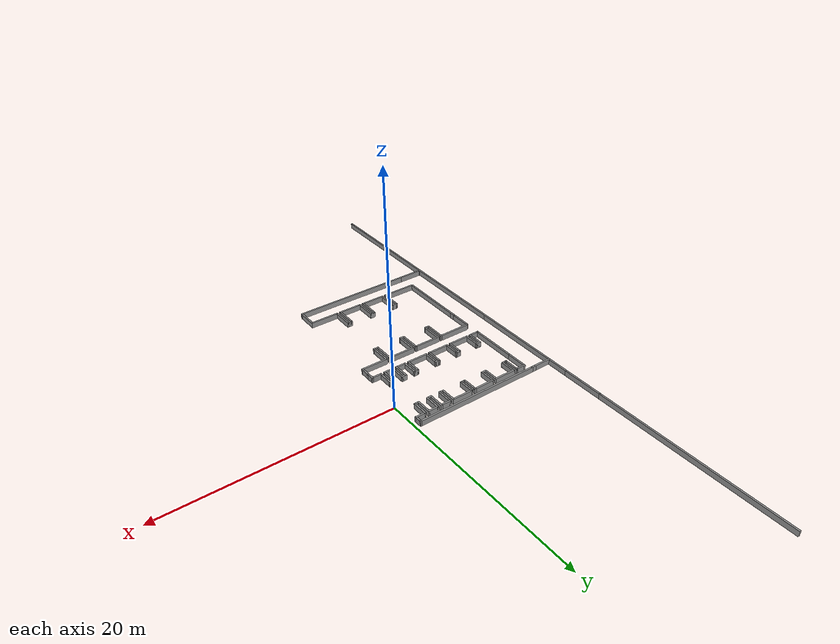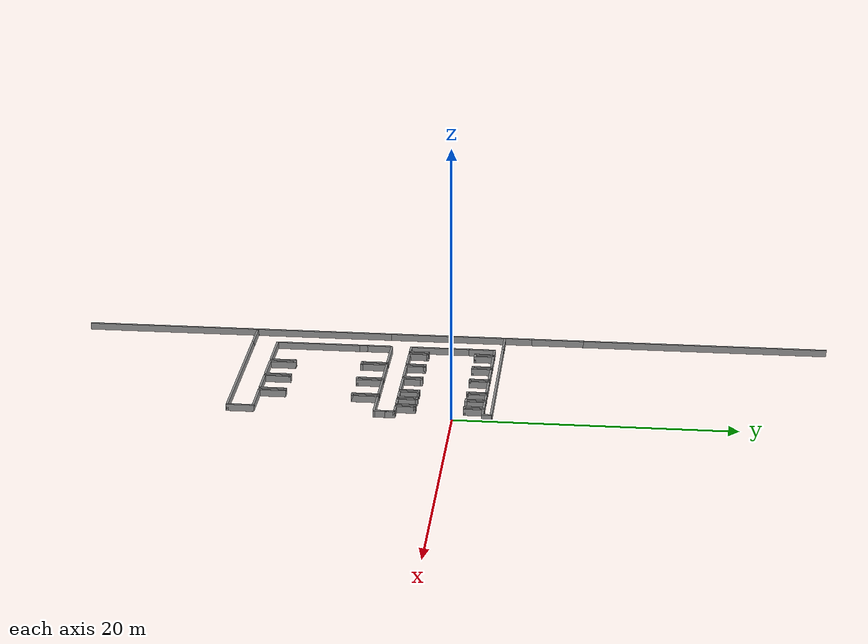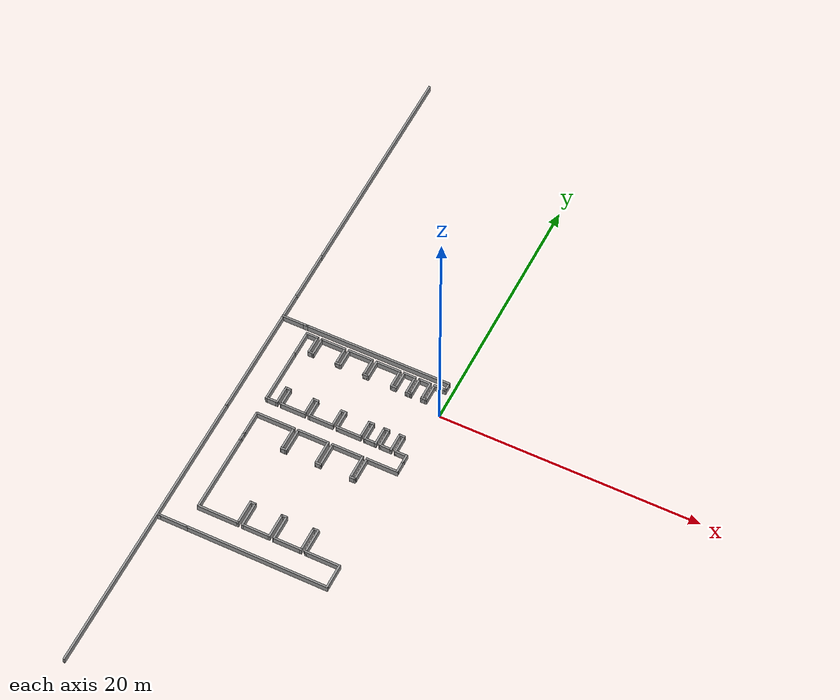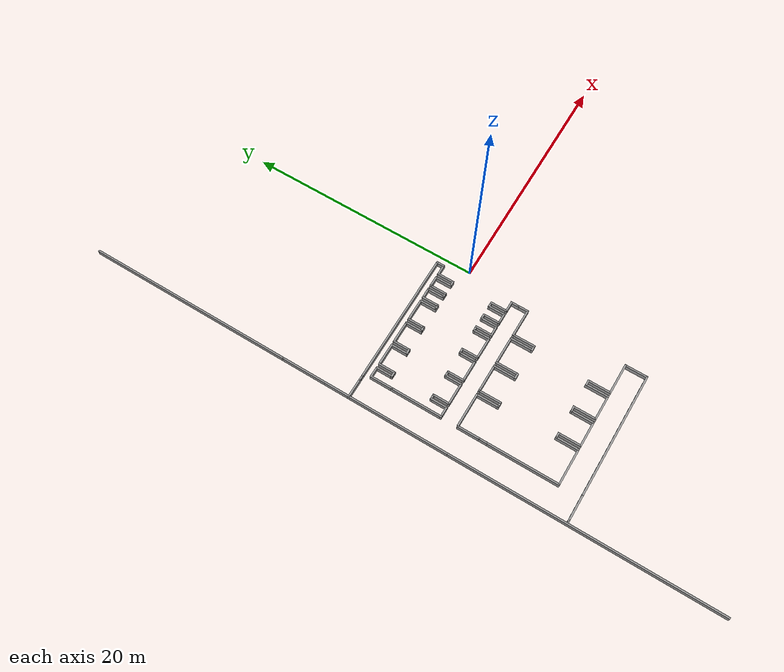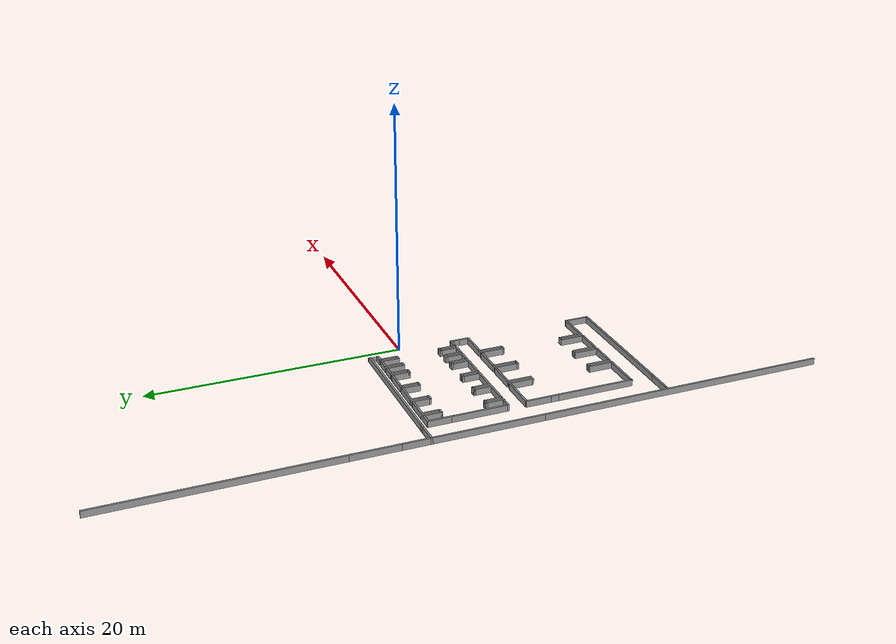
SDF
<sdf version="1.6">
 <model name="Dock3">
  <pose>-6.9775 -1.135 0 0 -0 0</pose>
  <link name="Wall_0">
   <collision name="Wall_0_Collision"><geometry><box><size>1 0.15 0.5</size></box></geometry></collision>
   <visual name="Wall_0_Visual">
    <geometry><box><size>1 0.15 0.5</size></box></geometry>
    <material>
     <script><uri>file://media/materials/scripts/gazebo.material</uri><name>Gazebo/Grey</name></script>
     <ambient>1 1 1 1</ambient>
    </material>
    <meta><layer>0</layer></meta>
   </visual>
   <pose>5.9725 -2.975 0 0 -0 3.14159</pose>
  </link>
  <link name="Wall_1">
   <collision name="Wall_1_Collision"><geometry><box><size>1.5 0.15 0.5</size></box></geometry></collision>
   <visual name="Wall_1_Visual">
    <geometry><box><size>1.5 0.15 0.5</size></box></geometry>
    <material>
     <script><uri>file://media/materials/scripts/gazebo.material</uri><name>Gazebo/Grey</name></script>
     <ambient>1 1 1 1</ambient>
    </material>
    <meta><layer>0</layer></meta>
   </visual>
   <pose>5.5475 -2.3 0 0 -0 1.5708</pose>
  </link>
  <link name="Wall_10">
   <collision name="Wall_10_Collision"><geometry><box><size>0.5 0.15 0.5</size></box></geometry></collision>
   <visual name="Wall_10_Visual">
    <geometry><box><size>0.5 0.15 0.5</size></box></geometry>
    <material>
     <script><uri>file://media/materials/scripts/gazebo.material</uri><name>Gazebo/Grey</name></script>
     <ambient>1 1 1 1</ambient>
    </material>
    <meta><layer>0</layer></meta>
   </visual>
   <pose>2.9725 -1.625 0 0 -0 3.14159</pose>
  </link>
  <link name="Wall_100">
   <collision name="Wall_100_Collision"><geometry><box><size>2 0.15 0.5</size></box></geometry></collision>
   <visual name="Wall_100_Visual">
    <geometry><box><size>2 0.15 0.5</size></box></geometry>
    <material>
     <script><uri>file://media/materials/scripts/gazebo.material</uri><name>Gazebo/Grey</name></script>
     <ambient>1 1 1 1</ambient>
    </material>
    <meta><layer>0</layer></meta>
   </visual>
   <pose>1.3475 -5.35 0 0 -0 -1.5708</pose>
  </link>
  <link name="Wall_101">
   <collision name="Wall_101_Collision"><geometry><box><size>0.5 0.15 0.5</size></box></geometry></collision>
   <visual name="Wall_101_Visual">
    <geometry><box><size>0.5 0.15 0.5</size></box></geometry>
    <material>
     <script><uri>file://media/materials/scripts/gazebo.material</uri><name>Gazebo/Grey</name></script>
     <ambient>1 1 1 1</ambient>
    </material>
    <meta><layer>0</layer></meta>
   </visual>
   <pose>1.1725 -6.275 0 0 -0 3.14159</pose>
  </link>
  <link name="Wall_102">
   <collision name="Wall_102_Collision"><geometry><box><size>2 0.15 0.5</size></box></geometry></collision>
   <visual name="Wall_102_Visual">
    <geometry><box><size>2 0.15 0.5</size></box></geometry>
    <material>
     <script><uri>file://media/materials/scripts/gazebo.material</uri><name>Gazebo/Grey</name></script>
     <ambient>1 1 1 1</ambient>
    </material>
    <meta><layer>0</layer></meta>
   </visual>
   <pose>0.997501 -5.35 0 0 -0 1.5708</pose>
  </link>
  <link name="Wall_103">
   <collision name="Wall_103_Collision"><geometry><box><size>2.5 0.15 0.5</size></box></geometry></collision>
   <visual name="Wall_103_Visual">
    <geometry><box><size>2.5 0.15 0.5</size></box></geometry>
    <material>
     <script><uri>file://media/materials/scripts/gazebo.material</uri><name>Gazebo/Grey</name></script>
     <ambient>1 1 1 1</ambient>
    </material>
    <meta><layer>0</layer></meta>
   </visual>
   <pose>-0.177499 -4.425 0 0 -0 3.14159</pose>
  </link>
  <link name="Wall_104">
   <collision name="Wall_104_Collision"><geometry><box><size>2 0.15 0.5</size></box></geometry></collision>
   <visual name="Wall_104_Visual">
    <geometry><box><size>2 0.15 0.5</size></box></geometry>
    <material>
     <script><uri>file://media/materials/scripts/gazebo.material</uri><name>Gazebo/Grey</name></script>
     <ambient>1 1 1 1</ambient>
    </material>
    <meta><layer>0</layer></meta>
   </visual>
   <pose>-1.3525 -5.35 0 0 -0 -1.5708</pose>
  </link>
  <link name="Wall_105">
   <collision name="Wall_105_Collision"><geometry><box><size>0.5 0.15 0.5</size></box></geometry></collision>
   <visual name="Wall_105_Visual">
    <geometry><box><size>0.5 0.15 0.5</size></box></geometry>
    <material>
     <script><uri>file://media/materials/scripts/gazebo.material</uri><name>Gazebo/Grey</name></script>
     <ambient>1 1 1 1</ambient>
    </material>
    <meta><layer>0</layer></meta>
   </visual>
   <pose>-1.5275 -6.275 0 0 -0 3.14159</pose>
  </link>
  <link name="Wall_106">
   <collision name="Wall_106_Collision"><geometry><box><size>2 0.15 0.5</size></box></geometry></collision>
   <visual name="Wall_106_Visual">
    <geometry><box><size>2 0.15 0.5</size></box></geometry>
    <material>
     <script><uri>file://media/materials/scripts/gazebo.material</uri><name>Gazebo/Grey</name></script>
     <ambient>1 1 1 1</ambient>
    </material>
    <meta><layer>0</layer></meta>
   </visual>
   <pose>-1.7025 -5.35 0 0 -0 1.5708</pose>
  </link>
  <link name="Wall_11">
   <collision name="Wall_11_Collision"><geometry><box><size>1.5 0.15 0.5</size></box></geometry></collision>
   <visual name="Wall_11_Visual">
    <geometry><box><size>1.5 0.15 0.5</size></box></geometry>
    <material>
     <script><uri>file://media/materials/scripts/gazebo.material</uri><name>Gazebo/Grey</name></script>
     <ambient>1 1 1 1</ambient>
    </material>
    <meta><layer>0</layer></meta>
   </visual>
   <pose>2.7975 -2.3 0 0 -0 -1.5708</pose>
  </link>
  <link name="Wall_112">
   <collision name="Wall_112_Collision"><geometry><box><size>3 0.15 0.5</size></box></geometry></collision>
   <visual name="Wall_112_Visual">
    <geometry><box><size>3 0.15 0.5</size></box></geometry>
    <material>
     <script><uri>file://media/materials/scripts/gazebo.material</uri><name>Gazebo/Grey</name></script>
     <ambient>1 1 1 1</ambient>
    </material>
    <meta><layer>0</layer></meta>
   </visual>
   <pose>-3.1275 -4.425 0 0 -0 3.14159</pose>
  </link>
  <link name="Wall_114">
   <collision name="Wall_114_Collision"><geometry><box><size>0.75 0.15 0.5</size></box></geometry></collision>
   <visual name="Wall_114_Visual">
    <geometry><box><size>0.75 0.15 0.5</size></box></geometry>
    <material>
     <script><uri>file://media/materials/scripts/gazebo.material</uri><name>Gazebo/Grey</name></script>
     <ambient>1 1 1 1</ambient>
    </material>
    <meta><layer>0</layer></meta>
   </visual>
   <pose>-4.6525 -6.625 0 0 -0 -1.5708</pose>
  </link>
  <link name="Wall_116">
   <collision name="Wall_116_Collision"><geometry><box><size>2 0.15 0.5</size></box></geometry></collision>
   <visual name="Wall_116_Visual">
    <geometry><box><size>2 0.15 0.5</size></box></geometry>
    <material>
     <script><uri>file://media/materials/scripts/gazebo.material</uri><name>Gazebo/Grey</name></script>
     <ambient>1 1 1 1</ambient>
    </material>
    <meta><layer>0</layer></meta>
   </visual>
   <pose>-4.6525 -5.4 0 0 -0 1.5708</pose>
  </link>
  <link name="Wall_118">
   <collision name="Wall_118_Collision"><geometry><box><size>6.25 0.15 0.5</size></box></geometry></collision>
   <visual name="Wall_118_Visual">
    <geometry><box><size>6.25 0.15 0.5</size></box></geometry>
    <material>
     <script><uri>file://media/materials/scripts/gazebo.material</uri><name>Gazebo/Grey</name></script>
     <ambient>1 1 1 1</ambient>
    </material>
    <meta><layer>0</layer></meta>
   </visual>
   <pose>-4.6525 -9.975 0 0 -0 -1.5708</pose>
  </link>
  <link name="Wall_119">
   <collision name="Wall_119_Collision"><geometry><box><size>3.25 0.15 0.5</size></box></geometry></collision>
   <visual name="Wall_119_Visual">
    <geometry><box><size>3.25 0.15 0.5</size></box></geometry>
    <material>
     <script><uri>file://media/materials/scripts/gazebo.material</uri><name>Gazebo/Grey</name></script>
     <ambient>1 1 1 1</ambient>
    </material>
    <meta><layer>0</layer></meta>
   </visual>
   <pose>-3.1025 -13.025 0 0 -0 0</pose>
  </link>
  <link name="Wall_12">
   <collision name="Wall_12_Collision"><geometry><box><size>2 0.15 0.5</size></box></geometry></collision>
   <visual name="Wall_12_Visual">
    <geometry><box><size>2 0.15 0.5</size></box></geometry>
    <material>
     <script><uri>file://media/materials/scripts/gazebo.material</uri><name>Gazebo/Grey</name></script>
     <ambient>1 1 1 1</ambient>
    </material>
    <meta><layer>0</layer></meta>
   </visual>
   <pose>1.8725 -2.975 0 0 -0 3.14159</pose>
  </link>
  <link name="Wall_120">
   <collision name="Wall_120_Collision"><geometry><box><size>2 0.15 0.5</size></box></geometry></collision>
   <visual name="Wall_120_Visual">
    <geometry><box><size>2 0.15 0.5</size></box></geometry>
    <material>
     <script><uri>file://media/materials/scripts/gazebo.material</uri><name>Gazebo/Grey</name></script>
     <ambient>1 1 1 1</ambient>
    </material>
    <meta><layer>0</layer></meta>
   </visual>
   <pose>-1.5525 -12.1 0 0 -0 1.5708</pose>
  </link>
  <link name="Wall_123">
   <collision name="Wall_123_Collision"><geometry><box><size>0.15 0.15 0.5</size></box></geometry></collision>
   <visual name="Wall_123_Visual">
    <geometry><box><size>0.15 0.15 0.5</size></box></geometry>
    <material>
     <script><uri>file://media/materials/scripts/gazebo.material</uri><name>Gazebo/Grey</name></script>
     <ambient>1 1 1 1</ambient>
    </material>
    <meta><layer>0</layer></meta>
   </visual>
   <pose>-1.5525 -11.175 0 0 -0 0</pose>
  </link>
  <link name="Wall_125">
   <collision name="Wall_125_Collision"><geometry><box><size>0.5 0.15 0.5</size></box></geometry></collision>
   <visual name="Wall_125_Visual">
    <geometry><box><size>0.5 0.15 0.5</size></box></geometry>
    <material>
     <script><uri>file://media/materials/scripts/gazebo.material</uri><name>Gazebo/Grey</name></script>
     <ambient>1 1 1 1</ambient>
    </material>
    <meta><layer>0</layer></meta>
   </visual>
   <pose>-1.3775 -11.175 0 0 -0 0</pose>
  </link>
  <link name="Wall_126">
   <collision name="Wall_126_Collision"><geometry><box><size>2 0.15 0.5</size></box></geometry></collision>
   <visual name="Wall_126_Visual">
    <geometry><box><size>2 0.15 0.5</size></box></geometry>
    <material>
     <script><uri>file://media/materials/scripts/gazebo.material</uri><name>Gazebo/Grey</name></script>
     <ambient>1 1 1 1</ambient>
    </material>
    <meta><layer>0</layer></meta>
   </visual>
   <pose>-1.2025 -12.1 0 0 -0 -1.5708</pose>
  </link>
  <link name="Wall_127">
   <collision name="Wall_127_Collision"><geometry><box><size>2.25 0.15 0.5</size></box></geometry></collision>
   <visual name="Wall_127_Visual">
    <geometry><box><size>2.25 0.15 0.5</size></box></geometry>
    <material>
     <script><uri>file://media/materials/scripts/gazebo.material</uri><name>Gazebo/Grey</name></script>
     <ambient>1 1 1 1</ambient>
    </material>
    <meta><layer>0</layer></meta>
   </visual>
   <pose>-0.152499 -13.025 0 0 -0 0</pose>
  </link>
  <link name="Wall_13">
   <collision name="Wall_13_Collision"><geometry><box><size>1.5 0.15 0.5</size></box></geometry></collision>
   <visual name="Wall_13_Visual">
    <geometry><box><size>1.5 0.15 0.5</size></box></geometry>
    <material>
     <script><uri>file://media/materials/scripts/gazebo.material</uri><name>Gazebo/Grey</name></script>
     <ambient>1 1 1 1</ambient>
    </material>
    <meta><layer>0</layer></meta>
   </visual>
   <pose>0.947501 -2.3 0 0 -0 1.5708</pose>
  </link>
  <link name="Wall_130">
   <collision name="Wall_130_Collision"><geometry><box><size>2 0.15 0.5</size></box></geometry></collision>
   <visual name="Wall_130_Visual">
    <geometry><box><size>2 0.15 0.5</size></box></geometry>
    <material>
     <script><uri>file://media/materials/scripts/gazebo.material</uri><name>Gazebo/Grey</name></script>
     <ambient>1 1 1 1</ambient>
    </material>
    <meta><layer>0</layer></meta>
   </visual>
   <pose>0.897501 -12.1 0 0 -0 1.5708</pose>
  </link>
  <link name="Wall_131">
   <collision name="Wall_131_Collision"><geometry><box><size>0.5 0.15 0.5</size></box></geometry></collision>
   <visual name="Wall_131_Visual">
    <geometry><box><size>0.5 0.15 0.5</size></box></geometry>
    <material>
     <script><uri>file://media/materials/scripts/gazebo.material</uri><name>Gazebo/Grey</name></script>
     <ambient>1 1 1 1</ambient>
    </material>
    <meta><layer>0</layer></meta>
   </visual>
   <pose>1.0725 -11.175 0 0 -0 0</pose>
  </link>
  <link name="Wall_132">
   <collision name="Wall_132_Collision"><geometry><box><size>2 0.15 0.5</size></box></geometry></collision>
   <visual name="Wall_132_Visual">
    <geometry><box><size>2 0.15 0.5</size></box></geometry>
    <material>
     <script><uri>file://media/materials/scripts/gazebo.material</uri><name>Gazebo/Grey</name></script>
     <ambient>1 1 1 1</ambient>
    </material>
    <meta><layer>0</layer></meta>
   </visual>
   <pose>1.2475 -12.1 0 0 -0 -1.5708</pose>
  </link>
  <link name="Wall_133">
   <collision name="Wall_133_Collision"><geometry><box><size>2.25 0.15 0.5</size></box></geometry></collision>
   <visual name="Wall_133_Visual">
    <geometry><box><size>2.25 0.15 0.5</size></box></geometry>
    <material>
     <script><uri>file://media/materials/scripts/gazebo.material</uri><name>Gazebo/Grey</name></script>
     <ambient>1 1 1 1</ambient>
    </material>
    <meta><layer>0</layer></meta>
   </visual>
   <pose>2.2975 -13.025 0 0 -0 0</pose>
  </link>
  <link name="Wall_134">
   <collision name="Wall_134_Collision"><geometry><box><size>2 0.15 0.5</size></box></geometry></collision>
   <visual name="Wall_134_Visual">
    <geometry><box><size>2 0.15 0.5</size></box></geometry>
    <material>
     <script><uri>file://media/materials/scripts/gazebo.material</uri><name>Gazebo/Grey</name></script>
     <ambient>1 1 1 1</ambient>
    </material>
    <meta><layer>0</layer></meta>
   </visual>
   <pose>3.3475 -12.1 0 0 -0 1.5708</pose>
  </link>
  <link name="Wall_137">
   <collision name="Wall_137_Collision"><geometry><box><size>0.5 0.15 0.5</size></box></geometry></collision>
   <visual name="Wall_137_Visual">
    <geometry><box><size>0.5 0.15 0.5</size></box></geometry>
    <material>
     <script><uri>file://media/materials/scripts/gazebo.material</uri><name>Gazebo/Grey</name></script>
     <ambient>1 1 1 1</ambient>
    </material>
    <meta><layer>0</layer></meta>
   </visual>
   <pose>3.5225 -11.175 0 0 -0 0</pose>
  </link>
  <link name="Wall_138">
   <collision name="Wall_138_Collision"><geometry><box><size>2 0.15 0.5</size></box></geometry></collision>
   <visual name="Wall_138_Visual">
    <geometry><box><size>2 0.15 0.5</size></box></geometry>
    <material>
     <script><uri>file://media/materials/scripts/gazebo.material</uri><name>Gazebo/Grey</name></script>
     <ambient>1 1 1 1</ambient>
    </material>
    <meta><layer>0</layer></meta>
   </visual>
   <pose>3.6975 -12.1 0 0 -0 -1.5708</pose>
  </link>
  <link name="Wall_139">
   <collision name="Wall_139_Collision"><geometry><box><size>2.75 0.15 0.5</size></box></geometry></collision>
   <visual name="Wall_139_Visual">
    <geometry><box><size>2.75 0.15 0.5</size></box></geometry>
    <material>
     <script><uri>file://media/materials/scripts/gazebo.material</uri><name>Gazebo/Grey</name></script>
     <ambient>1 1 1 1</ambient>
    </material>
    <meta><layer>0</layer></meta>
   </visual>
   <pose>4.9975 -13.025 0 0 -0 0</pose>
  </link>
  <link name="Wall_14">
   <collision name="Wall_14_Collision"><geometry><box><size>0.5 0.15 0.5</size></box></geometry></collision>
   <visual name="Wall_14_Visual">
    <geometry><box><size>0.5 0.15 0.5</size></box></geometry>
    <material>
     <script><uri>file://media/materials/scripts/gazebo.material</uri><name>Gazebo/Grey</name></script>
     <ambient>1 1 1 1</ambient>
    </material>
    <meta><layer>0</layer></meta>
   </visual>
   <pose>0.772501 -1.625 0 0 -0 3.14159</pose>
  </link>
  <link name="Wall_141">
   <collision name="Wall_141_Collision"><geometry><box><size>2 0.15 0.5</size></box></geometry></collision>
   <visual name="Wall_141_Visual">
    <geometry><box><size>2 0.15 0.5</size></box></geometry>
    <material>
     <script><uri>file://media/materials/scripts/gazebo.material</uri><name>Gazebo/Grey</name></script>
     <ambient>1 1 1 1</ambient>
    </material>
    <meta><layer>0</layer></meta>
   </visual>
   <pose>6.2975 -13.95 0 0 -0 -1.5708</pose>
  </link>
  <link name="Wall_142">
   <collision name="Wall_142_Collision"><geometry><box><size>11 0.15 0.5</size></box></geometry></collision>
   <visual name="Wall_142_Visual">
    <geometry><box><size>11 0.15 0.5</size></box></geometry>
    <material>
     <script><uri>file://media/materials/scripts/gazebo.material</uri><name>Gazebo/Grey</name></script>
     <ambient>1 1 1 1</ambient>
    </material>
    <meta><layer>0</layer></meta>
   </visual>
   <pose>0.872501 -14.875 0 0 -0 3.14159</pose>
  </link>
  <link name="Wall_143">
   <collision name="Wall_143_Collision"><geometry><box><size>2.25 0.15 0.5</size></box></geometry></collision>
   <visual name="Wall_143_Visual">
    <geometry><box><size>2.25 0.15 0.5</size></box></geometry>
    <material>
     <script><uri>file://media/materials/scripts/gazebo.material</uri><name>Gazebo/Grey</name></script>
     <ambient>1 1 1 1</ambient>
    </material>
    <meta><layer>0</layer></meta>
   </visual>
   <pose>-5.6025 -14.875 0 0 -0 3.14159</pose>
  </link>
  <link name="Wall_144">
   <collision name="Wall_144_Collision"><geometry><box><size>0.15 0.15 0.5</size></box></geometry></collision>
   <visual name="Wall_144_Visual">
    <geometry><box><size>0.15 0.15 0.5</size></box></geometry>
    <material>
     <script><uri>file://media/materials/scripts/gazebo.material</uri><name>Gazebo/Grey</name></script>
     <ambient>1 1 1 1</ambient>
    </material>
    <meta><layer>0</layer></meta>
   </visual>
   <pose>-6.6525 -14.875 0 0 -0 0</pose>
  </link>
  <link name="Wall_146">
   <collision name="Wall_146_Collision"><geometry><box><size>0.25 0.15 0.5</size></box></geometry></collision>
   <visual name="Wall_146_Visual">
    <geometry><box><size>0.25 0.15 0.5</size></box></geometry>
    <material>
     <script><uri>file://media/materials/scripts/gazebo.material</uri><name>Gazebo/Grey</name></script>
     <ambient>1 1 1 1</ambient>
    </material>
    <meta><layer>0</layer></meta>
   </visual>
   <pose>-6.7025 -14.875 0 0 -0 3.14159</pose>
  </link>
  <link name="Wall_15">
   <collision name="Wall_15_Collision"><geometry><box><size>1.5 0.15 0.5</size></box></geometry></collision>
   <visual name="Wall_15_Visual">
    <geometry><box><size>1.5 0.15 0.5</size></box></geometry>
    <material>
     <script><uri>file://media/materials/scripts/gazebo.material</uri><name>Gazebo/Grey</name></script>
     <ambient>1 1 1 1</ambient>
    </material>
    <meta><layer>0</layer></meta>
   </visual>
   <pose>0.597501 -2.3 0 0 -0 -1.5708</pose>
  </link>
  <link name="Wall_17">
   <collision name="Wall_17_Collision"><geometry><box><size>2 0.15 0.5</size></box></geometry></collision>
   <visual name="Wall_17_Visual">
    <geometry><box><size>2 0.15 0.5</size></box></geometry>
    <material>
     <script><uri>file://media/materials/scripts/gazebo.material</uri><name>Gazebo/Grey</name></script>
     <ambient>1 1 1 1</ambient>
    </material>
    <meta><layer>0</layer></meta>
   </visual>
   <pose>-0.327499 -2.975 0 0 -0 3.14159</pose>
  </link>
  <link name="Wall_18">
   <collision name="Wall_18_Collision"><geometry><box><size>1.5 0.15 0.5</size></box></geometry></collision>
   <visual name="Wall_18_Visual">
    <geometry><box><size>1.5 0.15 0.5</size></box></geometry>
    <material>
     <script><uri>file://media/materials/scripts/gazebo.material</uri><name>Gazebo/Grey</name></script>
     <ambient>1 1 1 1</ambient>
    </material>
    <meta><layer>0</layer></meta>
   </visual>
   <pose>-1.2525 -2.3 0 0 -0 1.5708</pose>
  </link>
  <link name="Wall_19">
   <collision name="Wall_19_Collision"><geometry><box><size>0.5 0.15 0.5</size></box></geometry></collision>
   <visual name="Wall_19_Visual">
    <geometry><box><size>0.5 0.15 0.5</size></box></geometry>
    <material>
     <script><uri>file://media/materials/scripts/gazebo.material</uri><name>Gazebo/Grey</name></script>
     <ambient>1 1 1 1</ambient>
    </material>
    <meta><layer>0</layer></meta>
   </visual>
   <pose>-1.4275 -1.625 0 0 -0 3.14159</pose>
  </link>
  <link name="Wall_2">
   <collision name="Wall_2_Collision"><geometry><box><size>0.5 0.15 0.5</size></box></geometry></collision>
   <visual name="Wall_2_Visual">
    <geometry><box><size>0.5 0.15 0.5</size></box></geometry>
    <material>
     <script><uri>file://media/materials/scripts/gazebo.material</uri><name>Gazebo/Grey</name></script>
     <ambient>1 1 1 1</ambient>
    </material>
    <meta><layer>0</layer></meta>
   </visual>
   <pose>5.3725 -1.625 0 0 -0 3.14159</pose>
  </link>
  <link name="Wall_20">
   <collision name="Wall_20_Collision"><geometry><box><size>1.5 0.15 0.5</size></box></geometry></collision>
   <visual name="Wall_20_Visual">
    <geometry><box><size>1.5 0.15 0.5</size></box></geometry>
    <material>
     <script><uri>file://media/materials/scripts/gazebo.material</uri><name>Gazebo/Grey</name></script>
     <ambient>1 1 1 1</ambient>
    </material>
    <meta><layer>0</layer></meta>
   </visual>
   <pose>-1.6025 -2.3 0 0 -0 -1.5708</pose>
  </link>
  <link name="Wall_21">
   <collision name="Wall_21_Collision"><geometry><box><size>2 0.15 0.5</size></box></geometry></collision>
   <visual name="Wall_21_Visual">
    <geometry><box><size>2 0.15 0.5</size></box></geometry>
    <material>
     <script><uri>file://media/materials/scripts/gazebo.material</uri><name>Gazebo/Grey</name></script>
     <ambient>1 1 1 1</ambient>
    </material>
    <meta><layer>0</layer></meta>
   </visual>
   <pose>-2.5275 -2.975 0 0 -0 3.14159</pose>
  </link>
  <link name="Wall_22">
   <collision name="Wall_22_Collision"><geometry><box><size>1.5 0.15 0.5</size></box></geometry></collision>
   <visual name="Wall_22_Visual">
    <geometry><box><size>1.5 0.15 0.5</size></box></geometry>
    <material>
     <script><uri>file://media/materials/scripts/gazebo.material</uri><name>Gazebo/Grey</name></script>
     <ambient>1 1 1 1</ambient>
    </material>
    <meta><layer>0</layer></meta>
   </visual>
   <pose>-3.4525 -2.3 0 0 -0 1.5708</pose>
  </link>
  <link name="Wall_23">
   <collision name="Wall_23_Collision"><geometry><box><size>0.5 0.15 0.5</size></box></geometry></collision>
   <visual name="Wall_23_Visual">
    <geometry><box><size>0.5 0.15 0.5</size></box></geometry>
    <material>
     <script><uri>file://media/materials/scripts/gazebo.material</uri><name>Gazebo/Grey</name></script>
     <ambient>1 1 1 1</ambient>
    </material>
    <meta><layer>0</layer></meta>
   </visual>
   <pose>-3.6275 -1.625 0 0 -0 3.14159</pose>
  </link>
  <link name="Wall_24">
   <collision name="Wall_24_Collision"><geometry><box><size>1.5 0.15 0.5</size></box></geometry></collision>
   <visual name="Wall_24_Visual">
    <geometry><box><size>1.5 0.15 0.5</size></box></geometry>
    <material>
     <script><uri>file://media/materials/scripts/gazebo.material</uri><name>Gazebo/Grey</name></script>
     <ambient>1 1 1 1</ambient>
    </material>
    <meta><layer>0</layer></meta>
   </visual>
   <pose>-3.8025 -2.3 0 0 -0 -1.5708</pose>
  </link>
  <link name="Wall_25">
   <collision name="Wall_25_Collision"><geometry><box><size>1 0.15 0.5</size></box></geometry></collision>
   <visual name="Wall_25_Visual">
    <geometry><box><size>1 0.15 0.5</size></box></geometry>
    <material>
     <script><uri>file://media/materials/scripts/gazebo.material</uri><name>Gazebo/Grey</name></script>
     <ambient>1 1 1 1</ambient>
    </material>
    <meta><layer>0</layer></meta>
   </visual>
   <pose>-4.2275 -2.975 0 0 -0 3.14159</pose>
  </link>
  <link name="Wall_27">
   <collision name="Wall_27_Collision"><geometry><box><size>4.5 0.15 0.5</size></box></geometry></collision>
   <visual name="Wall_27_Visual">
    <geometry><box><size>4.5 0.15 0.5</size></box></geometry>
    <material>
     <script><uri>file://media/materials/scripts/gazebo.material</uri><name>Gazebo/Grey</name></script>
     <ambient>1 1 1 1</ambient>
    </material>
    <meta><layer>0</layer></meta>
   </visual>
   <pose>-4.6525 -0.800002 0 0 -0 1.5708</pose>
  </link>
  <link name="Wall_3">
   <collision name="Wall_3_Collision"><geometry><box><size>1.5 0.15 0.5</size></box></geometry></collision>
   <visual name="Wall_3_Visual">
    <geometry><box><size>1.5 0.15 0.5</size></box></geometry>
    <material>
     <script><uri>file://media/materials/scripts/gazebo.material</uri><name>Gazebo/Grey</name></script>
     <ambient>1 1 1 1</ambient>
    </material>
    <meta><layer>0</layer></meta>
   </visual>
   <pose>5.1975 -2.3 0 0 -0 -1.5708</pose>
  </link>
  <link name="Wall_30">
   <collision name="Wall_30_Collision"><geometry><box><size>2 0.15 0.5</size></box></geometry></collision>
   <visual name="Wall_30_Visual">
    <geometry><box><size>2 0.15 0.5</size></box></geometry>
    <material>
     <script><uri>file://media/materials/scripts/gazebo.material</uri><name>Gazebo/Grey</name></script>
     <ambient>1 1 1 1</ambient>
    </material>
    <meta><layer>0</layer></meta>
   </visual>
   <pose>-4.6525 2.3 0 0 -0 1.5708</pose>
  </link>
  <link name="Wall_33">
   <collision name="Wall_33_Collision"><geometry><box><size>1 0.15 0.5</size></box></geometry></collision>
   <visual name="Wall_33_Visual">
    <geometry><box><size>1 0.15 0.5</size></box></geometry>
    <material>
     <script><uri>file://media/materials/scripts/gazebo.material</uri><name>Gazebo/Grey</name></script>
     <ambient>1 1 1 1</ambient>
    </material>
    <meta><layer>0</layer></meta>
   </visual>
   <pose>-4.2275 3.225 0 0 -0 0</pose>
  </link>
  <link name="Wall_34">
   <collision name="Wall_34_Collision"><geometry><box><size>1.5 0.15 0.5</size></box></geometry></collision>
   <visual name="Wall_34_Visual">
    <geometry><box><size>1.5 0.15 0.5</size></box></geometry>
    <material>
     <script><uri>file://media/materials/scripts/gazebo.material</uri><name>Gazebo/Grey</name></script>
     <ambient>1 1 1 1</ambient>
    </material>
    <meta><layer>0</layer></meta>
   </visual>
   <pose>-3.8025 2.55 0 0 -0 -1.5708</pose>
  </link>
  <link name="Wall_35">
   <collision name="Wall_35_Collision"><geometry><box><size>0.5 0.15 0.5</size></box></geometry></collision>
   <visual name="Wall_35_Visual">
    <geometry><box><size>0.5 0.15 0.5</size></box></geometry>
    <material>
     <script><uri>file://media/materials/scripts/gazebo.material</uri><name>Gazebo/Grey</name></script>
     <ambient>1 1 1 1</ambient>
    </material>
    <meta><layer>0</layer></meta>
   </visual>
   <pose>-3.6275 1.875 0 0 -0 0</pose>
  </link>
  <link name="Wall_36">
   <collision name="Wall_36_Collision"><geometry><box><size>1.5 0.15 0.5</size></box></geometry></collision>
   <visual name="Wall_36_Visual">
    <geometry><box><size>1.5 0.15 0.5</size></box></geometry>
    <material>
     <script><uri>file://media/materials/scripts/gazebo.material</uri><name>Gazebo/Grey</name></script>
     <ambient>1 1 1 1</ambient>
    </material>
    <meta><layer>0</layer></meta>
   </visual>
   <pose>-3.4525 2.55 0 0 -0 1.5708</pose>
  </link>
  <link name="Wall_37">
   <collision name="Wall_37_Collision"><geometry><box><size>2 0.15 0.5</size></box></geometry></collision>
   <visual name="Wall_37_Visual">
    <geometry><box><size>2 0.15 0.5</size></box></geometry>
    <material>
     <script><uri>file://media/materials/scripts/gazebo.material</uri><name>Gazebo/Grey</name></script>
     <ambient>1 1 1 1</ambient>
    </material>
    <meta><layer>0</layer></meta>
   </visual>
   <pose>-2.5275 3.225 0 0 -0 0</pose>
  </link>
  <link name="Wall_38">
   <collision name="Wall_38_Collision"><geometry><box><size>1.5 0.15 0.5</size></box></geometry></collision>
   <visual name="Wall_38_Visual">
    <geometry><box><size>1.5 0.15 0.5</size></box></geometry>
    <material>
     <script><uri>file://media/materials/scripts/gazebo.material</uri><name>Gazebo/Grey</name></script>
     <ambient>1 1 1 1</ambient>
    </material>
    <meta><layer>0</layer></meta>
   </visual>
   <pose>-1.6025 2.55 0 0 -0 -1.5708</pose>
  </link>
  <link name="Wall_39">
   <collision name="Wall_39_Collision"><geometry><box><size>0.5 0.15 0.5</size></box></geometry></collision>
   <visual name="Wall_39_Visual">
    <geometry><box><size>0.5 0.15 0.5</size></box></geometry>
    <material>
     <script><uri>file://media/materials/scripts/gazebo.material</uri><name>Gazebo/Grey</name></script>
     <ambient>1 1 1 1</ambient>
    </material>
    <meta><layer>0</layer></meta>
   </visual>
   <pose>-1.4275 1.875 0 0 -0 0</pose>
  </link>
  <link name="Wall_4">
   <collision name="Wall_4_Collision"><geometry><box><size>1 0.15 0.5</size></box></geometry></collision>
   <visual name="Wall_4_Visual">
    <geometry><box><size>1 0.15 0.5</size></box></geometry>
    <material>
     <script><uri>file://media/materials/scripts/gazebo.material</uri><name>Gazebo/Grey</name></script>
     <ambient>1 1 1 1</ambient>
    </material>
    <meta><layer>0</layer></meta>
   </visual>
   <pose>4.7725 -2.975 0 0 -0 3.14159</pose>
  </link>
  <link name="Wall_40">
   <collision name="Wall_40_Collision"><geometry><box><size>1.5 0.15 0.5</size></box></geometry></collision>
   <visual name="Wall_40_Visual">
    <geometry><box><size>1.5 0.15 0.5</size></box></geometry>
    <material>
     <script><uri>file://media/materials/scripts/gazebo.material</uri><name>Gazebo/Grey</name></script>
     <ambient>1 1 1 1</ambient>
    </material>
    <meta><layer>0</layer></meta>
   </visual>
   <pose>-1.2525 2.55 0 0 -0 1.5708</pose>
  </link>
  <link name="Wall_41">
   <collision name="Wall_41_Collision"><geometry><box><size>2 0.15 0.5</size></box></geometry></collision>
   <visual name="Wall_41_Visual">
    <geometry><box><size>2 0.15 0.5</size></box></geometry>
    <material>
     <script><uri>file://media/materials/scripts/gazebo.material</uri><name>Gazebo/Grey</name></script>
     <ambient>1 1 1 1</ambient>
    </material>
    <meta><layer>0</layer></meta>
   </visual>
   <pose>-0.327499 3.225 0 0 -0 0</pose>
  </link>
  <link name="Wall_42">
   <collision name="Wall_42_Collision"><geometry><box><size>1.5 0.15 0.5</size></box></geometry></collision>
   <visual name="Wall_42_Visual">
    <geometry><box><size>1.5 0.15 0.5</size></box></geometry>
    <material>
     <script><uri>file://media/materials/scripts/gazebo.material</uri><name>Gazebo/Grey</name></script>
     <ambient>1 1 1 1</ambient>
    </material>
    <meta><layer>0</layer></meta>
   </visual>
   <pose>0.597501 2.55 0 0 -0 -1.5708</pose>
  </link>
  <link name="Wall_43">
   <collision name="Wall_43_Collision"><geometry><box><size>0.5 0.15 0.5</size></box></geometry></collision>
   <visual name="Wall_43_Visual">
    <geometry><box><size>0.5 0.15 0.5</size></box></geometry>
    <material>
     <script><uri>file://media/materials/scripts/gazebo.material</uri><name>Gazebo/Grey</name></script>
     <ambient>1 1 1 1</ambient>
    </material>
    <meta><layer>0</layer></meta>
   </visual>
   <pose>0.772501 1.875 0 0 -0 0</pose>
  </link>
  <link name="Wall_45">
   <collision name="Wall_45_Collision"><geometry><box><size>1.5 0.15 0.5</size></box></geometry></collision>
   <visual name="Wall_45_Visual">
    <geometry><box><size>1.5 0.15 0.5</size></box></geometry>
    <material>
     <script><uri>file://media/materials/scripts/gazebo.material</uri><name>Gazebo/Grey</name></script>
     <ambient>1 1 1 1</ambient>
    </material>
    <meta><layer>0</layer></meta>
   </visual>
   <pose>0.947501 2.55 0 0 -0 1.5708</pose>
  </link>
  <link name="Wall_47">
   <collision name="Wall_47_Collision"><geometry><box><size>2 0.15 0.5</size></box></geometry></collision>
   <visual name="Wall_47_Visual">
    <geometry><box><size>2 0.15 0.5</size></box></geometry>
    <material>
     <script><uri>file://media/materials/scripts/gazebo.material</uri><name>Gazebo/Grey</name></script>
     <ambient>1 1 1 1</ambient>
    </material>
    <meta><layer>0</layer></meta>
   </visual>
   <pose>1.8725 3.225 0 0 -0 0</pose>
  </link>
  <link name="Wall_48">
   <collision name="Wall_48_Collision"><geometry><box><size>1.5 0.15 0.5</size></box></geometry></collision>
   <visual name="Wall_48_Visual">
    <geometry><box><size>1.5 0.15 0.5</size></box></geometry>
    <material>
     <script><uri>file://media/materials/scripts/gazebo.material</uri><name>Gazebo/Grey</name></script>
     <ambient>1 1 1 1</ambient>
    </material>
    <meta><layer>0</layer></meta>
   </visual>
   <pose>2.7975 2.55 0 0 -0 -1.5708</pose>
  </link>
  <link name="Wall_49">
   <collision name="Wall_49_Collision"><geometry><box><size>0.5 0.15 0.5</size></box></geometry></collision>
   <visual name="Wall_49_Visual">
    <geometry><box><size>0.5 0.15 0.5</size></box></geometry>
    <material>
     <script><uri>file://media/materials/scripts/gazebo.material</uri><name>Gazebo/Grey</name></script>
     <ambient>1 1 1 1</ambient>
    </material>
    <meta><layer>0</layer></meta>
   </visual>
   <pose>2.9725 1.875 0 0 -0 0</pose>
  </link>
  <link name="Wall_5">
   <collision name="Wall_5_Collision"><geometry><box><size>1.5 0.15 0.5</size></box></geometry></collision>
   <visual name="Wall_5_Visual">
    <geometry><box><size>1.5 0.15 0.5</size></box></geometry>
    <material>
     <script><uri>file://media/materials/scripts/gazebo.material</uri><name>Gazebo/Grey</name></script>
     <ambient>1 1 1 1</ambient>
    </material>
    <meta><layer>0</layer></meta>
   </visual>
   <pose>4.3475 -2.3 0 0 -0 1.5708</pose>
  </link>
  <link name="Wall_50">
   <collision name="Wall_50_Collision"><geometry><box><size>1.5 0.15 0.5</size></box></geometry></collision>
   <visual name="Wall_50_Visual">
    <geometry><box><size>1.5 0.15 0.5</size></box></geometry>
    <material>
     <script><uri>file://media/materials/scripts/gazebo.material</uri><name>Gazebo/Grey</name></script>
     <ambient>1 1 1 1</ambient>
    </material>
    <meta><layer>0</layer></meta>
   </visual>
   <pose>3.1475 2.55 0 0 -0 1.5708</pose>
  </link>
  <link name="Wall_51">
   <collision name="Wall_51_Collision"><geometry><box><size>1 0.15 0.5</size></box></geometry></collision>
   <visual name="Wall_51_Visual">
    <geometry><box><size>1 0.15 0.5</size></box></geometry>
    <material>
     <script><uri>file://media/materials/scripts/gazebo.material</uri><name>Gazebo/Grey</name></script>
     <ambient>1 1 1 1</ambient>
    </material>
    <meta><layer>0</layer></meta>
   </visual>
   <pose>3.5725 3.225 0 0 -0 0</pose>
  </link>
  <link name="Wall_52">
   <collision name="Wall_52_Collision"><geometry><box><size>1.5 0.15 0.5</size></box></geometry></collision>
   <visual name="Wall_52_Visual">
    <geometry><box><size>1.5 0.15 0.5</size></box></geometry>
    <material>
     <script><uri>file://media/materials/scripts/gazebo.material</uri><name>Gazebo/Grey</name></script>
     <ambient>1 1 1 1</ambient>
    </material>
    <meta><layer>0</layer></meta>
   </visual>
   <pose>3.9975 2.55 0 0 -0 -1.5708</pose>
  </link>
  <link name="Wall_53">
   <collision name="Wall_53_Collision"><geometry><box><size>0.5 0.15 0.5</size></box></geometry></collision>
   <visual name="Wall_53_Visual">
    <geometry><box><size>0.5 0.15 0.5</size></box></geometry>
    <material>
     <script><uri>file://media/materials/scripts/gazebo.material</uri><name>Gazebo/Grey</name></script>
     <ambient>1 1 1 1</ambient>
    </material>
    <meta><layer>0</layer></meta>
   </visual>
   <pose>4.1725 1.875 0 0 -0 0</pose>
  </link>
  <link name="Wall_54">
   <collision name="Wall_54_Collision"><geometry><box><size>1.5 0.15 0.5</size></box></geometry></collision>
   <visual name="Wall_54_Visual">
    <geometry><box><size>1.5 0.15 0.5</size></box></geometry>
    <material>
     <script><uri>file://media/materials/scripts/gazebo.material</uri><name>Gazebo/Grey</name></script>
     <ambient>1 1 1 1</ambient>
    </material>
    <meta><layer>0</layer></meta>
   </visual>
   <pose>4.3475 2.55 0 0 -0 1.5708</pose>
  </link>
  <link name="Wall_55">
   <collision name="Wall_55_Collision"><geometry><box><size>1 0.15 0.5</size></box></geometry></collision>
   <visual name="Wall_55_Visual">
    <geometry><box><size>1 0.15 0.5</size></box></geometry>
    <material>
     <script><uri>file://media/materials/scripts/gazebo.material</uri><name>Gazebo/Grey</name></script>
     <ambient>1 1 1 1</ambient>
    </material>
    <meta><layer>0</layer></meta>
   </visual>
   <pose>4.7725 3.225 0 0 -0 0</pose>
  </link>
  <link name="Wall_56">
   <collision name="Wall_56_Collision"><geometry><box><size>1.5 0.15 0.5</size></box></geometry></collision>
   <visual name="Wall_56_Visual">
    <geometry><box><size>1.5 0.15 0.5</size></box></geometry>
    <material>
     <script><uri>file://media/materials/scripts/gazebo.material</uri><name>Gazebo/Grey</name></script>
     <ambient>1 1 1 1</ambient>
    </material>
    <meta><layer>0</layer></meta>
   </visual>
   <pose>5.1975 2.55 0 0 -0 -1.5708</pose>
  </link>
  <link name="Wall_6">
   <collision name="Wall_6_Collision"><geometry><box><size>0.5 0.15 0.5</size></box></geometry></collision>
   <visual name="Wall_6_Visual">
    <geometry><box><size>0.5 0.15 0.5</size></box></geometry>
    <material>
     <script><uri>file://media/materials/scripts/gazebo.material</uri><name>Gazebo/Grey</name></script>
     <ambient>1 1 1 1</ambient>
    </material>
    <meta><layer>0</layer></meta>
   </visual>
   <pose>4.1725 -1.625 0 0 -0 3.14159</pose>
  </link>
  <link name="Wall_62">
   <collision name="Wall_62_Collision"><geometry><box><size>0.5 0.15 0.5</size></box></geometry></collision>
   <visual name="Wall_62_Visual">
    <geometry><box><size>0.5 0.15 0.5</size></box></geometry>
    <material>
     <script><uri>file://media/materials/scripts/gazebo.material</uri><name>Gazebo/Grey</name></script>
     <ambient>1 1 1 1</ambient>
    </material>
    <meta><layer>0</layer></meta>
   </visual>
   <pose>5.3725 1.875 0 0 -0 0</pose>
  </link>
  <link name="Wall_63">
   <collision name="Wall_63_Collision"><geometry><box><size>1.5 0.15 0.5</size></box></geometry></collision>
   <visual name="Wall_63_Visual">
    <geometry><box><size>1.5 0.15 0.5</size></box></geometry>
    <material>
     <script><uri>file://media/materials/scripts/gazebo.material</uri><name>Gazebo/Grey</name></script>
     <ambient>1 1 1 1</ambient>
    </material>
    <meta><layer>0</layer></meta>
   </visual>
   <pose>5.5475 2.55 0 0 -0 1.5708</pose>
  </link>
  <link name="Wall_64">
   <collision name="Wall_64_Collision"><geometry><box><size>1 0.15 0.5</size></box></geometry></collision>
   <visual name="Wall_64_Visual">
    <geometry><box><size>1 0.15 0.5</size></box></geometry>
    <material>
     <script><uri>file://media/materials/scripts/gazebo.material</uri><name>Gazebo/Grey</name></script>
     <ambient>1 1 1 1</ambient>
    </material>
    <meta><layer>0</layer></meta>
   </visual>
   <pose>5.9725 3.225 0 0 -0 0</pose>
  </link>
  <link name="Wall_66">
   <collision name="Wall_66_Collision"><geometry><box><size>0.75 0.15 0.5</size></box></geometry></collision>
   <visual name="Wall_66_Visual">
    <geometry><box><size>0.75 0.15 0.5</size></box></geometry>
    <material>
     <script><uri>file://media/materials/scripts/gazebo.material</uri><name>Gazebo/Grey</name></script>
     <ambient>1 1 1 1</ambient>
    </material>
    <meta><layer>0</layer></meta>
   </visual>
   <pose>6.3975 3.525 0 0 -0 1.5708</pose>
  </link>
  <link name="Wall_67">
   <collision name="Wall_67_Collision"><geometry><box><size>11.5 0.15 0.5</size></box></geometry></collision>
   <visual name="Wall_67_Visual">
    <geometry><box><size>11.5 0.15 0.5</size></box></geometry>
    <material>
     <script><uri>file://media/materials/scripts/gazebo.material</uri><name>Gazebo/Grey</name></script>
     <ambient>1 1 1 1</ambient>
    </material>
    <meta><layer>0</layer></meta>
   </visual>
   <pose>0.722501 3.825 0 0 -0 3.14159</pose>
  </link>
  <link name="Wall_68">
   <collision name="Wall_68_Collision"><geometry><box><size>0.5 0.15 0.5</size></box></geometry></collision>
   <visual name="Wall_68_Visual">
    <geometry><box><size>0.5 0.15 0.5</size></box></geometry>
    <material>
     <script><uri>file://media/materials/scripts/gazebo.material</uri><name>Gazebo/Grey</name></script>
     <ambient>1 1 1 1</ambient>
    </material>
    <meta><layer>0</layer></meta>
   </visual>
   <pose>-5.1275 3.825 0 0 -0 3.14159</pose>
  </link>
  <link name="Wall_7">
   <collision name="Wall_7_Collision"><geometry><box><size>1.5 0.15 0.5</size></box></geometry></collision>
   <visual name="Wall_7_Visual">
    <geometry><box><size>1.5 0.15 0.5</size></box></geometry>
    <material>
     <script><uri>file://media/materials/scripts/gazebo.material</uri><name>Gazebo/Grey</name></script>
     <ambient>1 1 1 1</ambient>
    </material>
    <meta><layer>0</layer></meta>
   </visual>
   <pose>3.9975 -2.3 0 0 -0 -1.5708</pose>
  </link>
  <link name="Wall_76">
   <collision name="Wall_76_Collision"><geometry><box><size>0.75 0.15 0.5</size></box></geometry></collision>
   <visual name="Wall_76_Visual">
    <geometry><box><size>0.75 0.15 0.5</size></box></geometry>
    <material>
     <script><uri>file://media/materials/scripts/gazebo.material</uri><name>Gazebo/Grey</name></script>
     <ambient>1 1 1 1</ambient>
    </material>
    <meta><layer>0</layer></meta>
   </visual>
   <pose>6.3975 -3.275 0 0 -0 -1.5708</pose>
  </link>
  <link name="Wall_8">
   <collision name="Wall_8_Collision"><geometry><box><size>1 0.15 0.5</size></box></geometry></collision>
   <visual name="Wall_8_Visual">
    <geometry><box><size>1 0.15 0.5</size></box></geometry>
    <material>
     <script><uri>file://media/materials/scripts/gazebo.material</uri><name>Gazebo/Grey</name></script>
     <ambient>1 1 1 1</ambient>
    </material>
    <meta><layer>0</layer></meta>
   </visual>
   <pose>3.5725 -2.975 0 0 -0 3.14159</pose>
  </link>
  <link name="Wall_80">
   <collision name="Wall_80_Collision"><geometry><box><size>1.75 0.15 0.5</size></box></geometry></collision>
   <visual name="Wall_80_Visual">
    <geometry><box><size>1.75 0.15 0.5</size></box></geometry>
    <material>
     <script><uri>file://media/materials/scripts/gazebo.material</uri><name>Gazebo/Grey</name></script>
     <ambient>1 1 1 1</ambient>
    </material>
    <meta><layer>0</layer></meta>
   </visual>
   <pose>-6.1025 3.825 0 0 -0 3.14159</pose>
  </link>
  <link name="Wall_81">
   <collision name="Wall_81_Collision"><geometry><box><size>2.25 0.15 0.5</size></box></geometry></collision>
   <visual name="Wall_81_Visual">
    <geometry><box><size>2.25 0.15 0.5</size></box></geometry>
    <material>
     <script><uri>file://media/materials/scripts/gazebo.material</uri><name>Gazebo/Grey</name></script>
     <ambient>1 1 1 1</ambient>
    </material>
    <meta><layer>0</layer></meta>
   </visual>
   <pose>-6.9025 4.875 0 0 -0 1.5708</pose>
  </link>
  <link name="Wall_83">
   <collision name="Wall_83_Collision"><geometry><box><size>4 0.15 0.5</size></box></geometry></collision>
   <visual name="Wall_83_Visual">
    <geometry><box><size>4 0.15 0.5</size></box></geometry>
    <material>
     <script><uri>file://media/materials/scripts/gazebo.material</uri><name>Gazebo/Grey</name></script>
     <ambient>1 1 1 1</ambient>
    </material>
    <meta><layer>0</layer></meta>
   </visual>
   <pose>-6.9025 7.85 0 0 -0 1.5708</pose>
  </link>
  <link name="Wall_86">
   <collision name="Wall_86_Collision"><geometry><box><size>18 0.15 0.5</size></box></geometry></collision>
   <visual name="Wall_86_Visual">
    <geometry><box><size>18 0.15 0.5</size></box></geometry>
    <material>
     <script><uri>file://media/materials/scripts/gazebo.material</uri><name>Gazebo/Grey</name></script>
     <ambient>1 1 1 1</ambient>
    </material>
    <meta><layer>0</layer></meta>
   </visual>
   <pose>-6.9025 18.7 0 0 -0 1.5708</pose>
  </link>
  <link name="Wall_88">
   <collision name="Wall_88_Collision"><geometry><box><size>8.75 0.15 0.5</size></box></geometry></collision>
   <visual name="Wall_88_Visual">
    <geometry><box><size>8.75 0.15 0.5</size></box></geometry>
    <material>
     <script><uri>file://media/materials/scripts/gazebo.material</uri><name>Gazebo/Grey</name></script>
     <ambient>1 1 1 1</ambient>
    </material>
    <meta><layer>0</layer></meta>
   </visual>
   <pose>-6.9025 -0.475002 0 0 -0 -1.5708</pose>
  </link>
  <link name="Wall_9">
   <collision name="Wall_9_Collision"><geometry><box><size>1.5 0.15 0.5</size></box></geometry></collision>
   <visual name="Wall_9_Visual">
    <geometry><box><size>1.5 0.15 0.5</size></box></geometry>
    <material>
     <script><uri>file://media/materials/scripts/gazebo.material</uri><name>Gazebo/Grey</name></script>
     <ambient>1 1 1 1</ambient>
    </material>
    <meta><layer>0</layer></meta>
   </visual>
   <pose>3.1475 -2.3 0 0 -0 1.5708</pose>
  </link>
  <link name="Wall_92">
   <collision name="Wall_92_Collision"><geometry><box><size>23 0.15 0.5</size></box></geometry></collision>
   <visual name="Wall_92_Visual">
    <geometry><box><size>23 0.15 0.5</size></box></geometry>
    <material>
     <script><uri>file://media/materials/scripts/gazebo.material</uri><name>Gazebo/Grey</name></script>
     <ambient>1 1 1 1</ambient>
    </material>
    <meta><layer>0</layer></meta>
   </visual>
   <pose>-6.9025 -16.2 0 0 -0 -1.5708</pose>
  </link>
  <link name="Wall_94">
   <collision name="Wall_94_Collision"><geometry><box><size>1 0.15 0.5</size></box></geometry></collision>
   <visual name="Wall_94_Visual">
    <geometry><box><size>1 0.15 0.5</size></box></geometry>
    <material>
     <script><uri>file://media/materials/scripts/gazebo.material</uri><name>Gazebo/Grey</name></script>
     <ambient>1 1 1 1</ambient>
    </material>
    <meta><layer>0</layer></meta>
   </visual>
   <pose>6.3975 -4 0 0 -0 -1.5708</pose>
  </link>
  <link name="Wall_95">
   <collision name="Wall_95_Collision"><geometry><box><size>2.5 0.15 0.5</size></box></geometry></collision>
   <visual name="Wall_95_Visual">
    <geometry><box><size>2.5 0.15 0.5</size></box></geometry>
    <material>
     <script><uri>file://media/materials/scripts/gazebo.material</uri><name>Gazebo/Grey</name></script>
     <ambient>1 1 1 1</ambient>
    </material>
    <meta><layer>0</layer></meta>
   </visual>
   <pose>5.2225 -4.425 0 0 -0 3.14159</pose>
  </link>
  <link name="Wall_96">
   <collision name="Wall_96_Collision"><geometry><box><size>2 0.15 0.5</size></box></geometry></collision>
   <visual name="Wall_96_Visual">
    <geometry><box><size>2 0.15 0.5</size></box></geometry>
    <material>
     <script><uri>file://media/materials/scripts/gazebo.material</uri><name>Gazebo/Grey</name></script>
     <ambient>1 1 1 1</ambient>
    </material>
    <meta><layer>0</layer></meta>
   </visual>
   <pose>4.0475 -5.35 0 0 -0 -1.5708</pose>
  </link>
  <link name="Wall_97">
   <collision name="Wall_97_Collision"><geometry><box><size>0.5 0.15 0.5</size></box></geometry></collision>
   <visual name="Wall_97_Visual">
    <geometry><box><size>0.5 0.15 0.5</size></box></geometry>
    <material>
     <script><uri>file://media/materials/scripts/gazebo.material</uri><name>Gazebo/Grey</name></script>
     <ambient>1 1 1 1</ambient>
    </material>
    <meta><layer>0</layer></meta>
   </visual>
   <pose>3.8725 -6.275 0 0 -0 3.14159</pose>
  </link>
  <link name="Wall_98">
   <collision name="Wall_98_Collision"><geometry><box><size>2 0.15 0.5</size></box></geometry></collision>
   <visual name="Wall_98_Visual">
    <geometry><box><size>2 0.15 0.5</size></box></geometry>
    <material>
     <script><uri>file://media/materials/scripts/gazebo.material</uri><name>Gazebo/Grey</name></script>
     <ambient>1 1 1 1</ambient>
    </material>
    <meta><layer>0</layer></meta>
   </visual>
   <pose>3.6975 -5.35 0 0 -0 1.5708</pose>
  </link>
  <link name="Wall_99">
   <collision name="Wall_99_Collision"><geometry><box><size>2.5 0.15 0.5</size></box></geometry></collision>
   <visual name="Wall_99_Visual">
    <geometry><box><size>2.5 0.15 0.5</size></box></geometry>
    <material>
     <script><uri>file://media/materials/scripts/gazebo.material</uri><name>Gazebo/Grey</name></script>
     <ambient>1 1 1 1</ambient>
    </material>
    <meta><layer>0</layer></meta>
   </visual>
   <pose>2.5225 -4.425 0 0 -0 3.14159</pose>
  </link>
  <static>1</static>
 </model>
</sdf>
